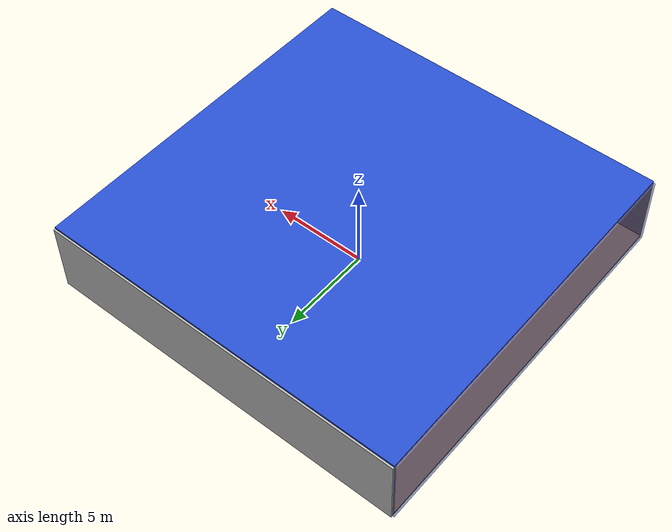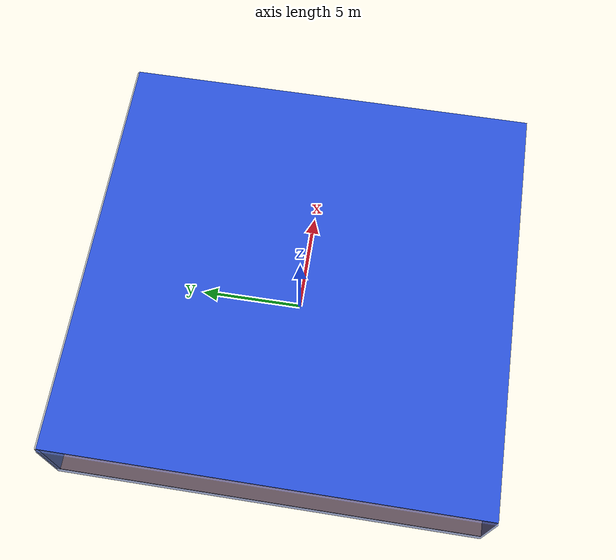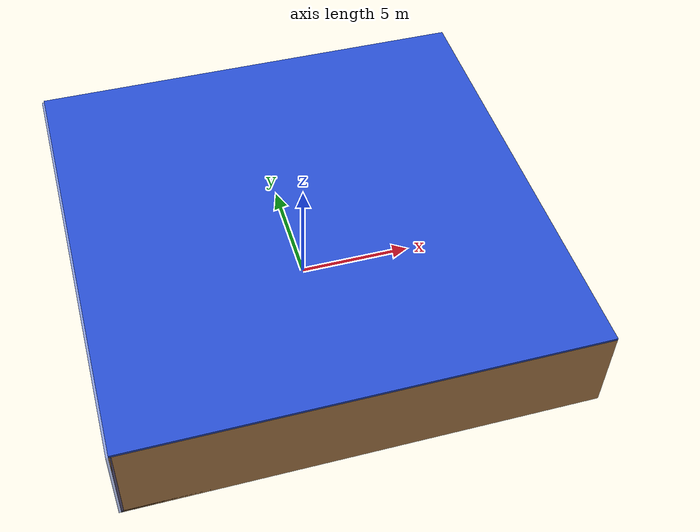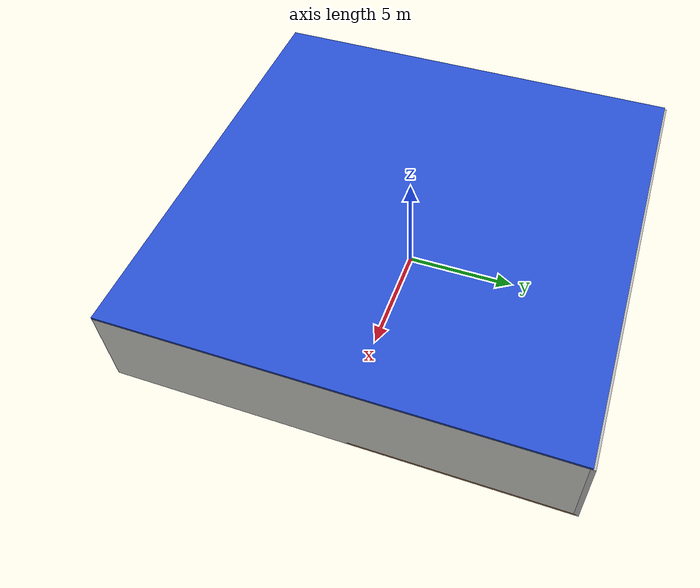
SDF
<sdf version="1.4">
 <world name="default">
  <physics type="ode">
   <max_step_size>0.001</max_step_size>
   <real_time_factor>1</real_time_factor>
   <real_time_update_rate>1000</real_time_update_rate>
   <gravity>0 0 -9.8</gravity>
  </physics>
  <scene><ambient>0.4 0.4 0.4 1</ambient><background>0.7 0.7 0.7 1</background><shadows>1</shadows></scene>
  <model name="Surrounding">
   <static>1</static>
   <link name="Ceiling">
    <collision name="Ceiling_Collision"><geometry><box><size>20 20 0.1</size></box></geometry></collision>
    <visual name="Ceiling_Visual">
     <geometry><box><size>20 20 0.1</size></box></geometry>
     <material>
      <script><uri>file://media/materials/scripts/gazebo.material</uri><name>Gazebo/BlueGlow</name></script>
     </material>
    </visual>
    <pose>0 0 4.05 0 0 0</pose>
   </link>
   <link name="Wall_South">
    <collision name="Wall_South_Collision">
     <geometry><box><size>20 0 4</size></box></geometry>
     <pose>0 0 2 0 -0 0</pose>
    </collision>
    <visual name="Wall_South_Visual">
     <pose>0 0 2 0 -0 0</pose>
     <geometry><box><size>20 0 4</size></box></geometry>
     <material>
      <script><uri>file://media/materials/scripts/gazebo.material</uri><name>Gazebo/WoodPallet</name></script>
     </material>
    </visual>
    <velocity_decay><linear>0</linear><angular>0</angular></velocity_decay>
    <pose>0 -10 0 0 -0 0</pose>
   </link>
   <link name="Wall_East">
    <collision name="Wall_21_Collision">
     <geometry><box><size>20 0 4</size></box></geometry>
     <pose>0 0 2 0 -0 0</pose>
    </collision>
    <visual name="Wall_21_Visual">
     <pose>0 0 2 0 -0 0</pose>
     <geometry><box><size>20 0 4</size></box></geometry>
     <material>
      <script><uri>file://media/materials/scripts/gazebo.material</uri><name>Gazebo/CeilingTiled</name></script>
     </material>
    </visual>
    <velocity_decay><linear>0</linear><angular>0</angular></velocity_decay>
    <pose>10 0 0 0 -0 1.5708</pose>
   </link>
   <link name="Wall_North">
    <collision name="Wall_22_Collision">
     <geometry><box><size>20 0.2 4</size></box></geometry>
     <pose>0 0 2 0 -0 0</pose>
    </collision>
    <visual name="Wall_22_Visual">
     <pose>0 0 2 0 -0 0</pose>
     <geometry><box><size>20 0.2 4</size></box></geometry>
     <material>
      <script><uri>file://media/materials/scripts/gazebo.material</uri><name>Gazebo/Pioneer2Body</name></script>
     </material>
    </visual>
    <velocity_decay><linear>0</linear><angular>0</angular></velocity_decay>
    <pose>0 10 0 0 -0 0</pose>
   </link>
   <link name="Wall_West">
    <collision name="Wall_23_Collision">
     <geometry><box><size>20 0.2 4</size></box></geometry>
     <pose>0 0 2 0 -0 0</pose>
    </collision>
    <visual name="Wall_23_Visual">
     <pose>0 0 2 0 -0 0</pose>
     <geometry><box><size>20 0.2 4</size></box></geometry>
     <material>
      <script><uri>file://media/materials/scripts/gazebo.material</uri><name>Gazebo/BlueTransparent</name></script>
     </material>
    </visual>
    <velocity_decay><linear>0</linear><angular>0</angular></velocity_decay>
    <pose>-10 0 0 0 0 -1.5708</pose>
   </link>
   <link name="Ground_link">
    <collision name="collision">
     <pose>0 0 .05 0 -0 0</pose>
     <geometry><box><size>20 20 0.1</size></box></geometry>
    </collision>
    <visual name="visual">
     <pose>0 0 .05 0 -0 0</pose>
     <geometry><box><size>20 20 0.1</size></box></geometry>
     <material>
      <script><uri>file://media/materials/scripts/gazebo.material</uri><name>Gazebo/Wood</name></script>
     </material>
    </visual>
   </link>
   <static>1</static>
  </model>
  <spherical_coordinates>
   <surface_model>EARTH_WGS84</surface_model>
   <latitude_deg>0</latitude_deg>
   <longitude_deg>0</longitude_deg>
   <elevation>0</elevation>
   <heading_deg>0</heading_deg>
  </spherical_coordinates>
  <light name="lightball_0" type="diffuse">
   <diffuse>0.8 0.8 0.8 1</diffuse>
   <specular>0.2 0.2 0.2 1</specular>
   <attenuation>
    <range>100</range>
    <constant>0.7</constant>
    <linear>0.01</linear>
    <quadratic>0.001</quadratic>
   </attenuation>
   <direction>-0.5 0.1 -0.9</direction>
   <pose>1.02545805414 9.31068824186 0.944837938011 0 0 0</pose>
  </light>
  <light name="lightball_1" type="diffuse">
   <diffuse>0.8 0.8 0.8 1</diffuse>
   <specular>0.2 0.2 0.2 1</specular>
   <attenuation>
    <range>100</range>
    <constant>0.7</constant>
    <linear>0.01</linear>
    <quadratic>0.001</quadratic>
   </attenuation>
   <direction>-0.5 0.1 -0.9</direction>
   <pose>-8.92053106584 -3.39159599624 3.48284910774 0 0 0</pose>
  </light>
  <light name="lightball_2" type="diffuse">
   <diffuse>0.8 0.8 0.8 1</diffuse>
   <specular>0.2 0.2 0.2 1</specular>
   <attenuation>
    <range>100</range>
    <constant>0.7</constant>
    <linear>0.01</linear>
    <quadratic>0.001</quadratic>
   </attenuation>
   <direction>-0.5 0.1 -0.9</direction>
   <pose>-8.82117177053 -2.84030920298 1.78098488051 0 0 0</pose>
  </light>
  <light name="lightball_3" type="diffuse">
   <diffuse>0.8 0.8 0.8 1</diffuse>
   <specular>0.2 0.2 0.2 1</specular>
   <attenuation>
    <range>100</range>
    <constant>0.7</constant>
    <linear>0.01</linear>
    <quadratic>0.001</quadratic>
   </attenuation>
   <direction>-0.5 0.1 -0.9</direction>
   <pose>-6.27739198261 5.73345018408 1.29045458466 0 0 0</pose>
  </light>
  <light name="lightball_4" type="diffuse">
   <diffuse>0.8 0.8 0.8 1</diffuse>
   <specular>0.2 0.2 0.2 1</specular>
   <attenuation>
    <range>100</range>
    <constant>0.7</constant>
    <linear>0.01</linear>
    <quadratic>0.001</quadratic>
   </attenuation>
   <direction>-0.5 0.1 -0.9</direction>
   <pose>8.05211000723 -4.61288281313 3.41287507909 0 0 0</pose>
  </light>
  <light name="lightball_5" type="diffuse">
   <diffuse>0.8 0.8 0.8 1</diffuse>
   <specular>0.2 0.2 0.2 1</specular>
   <attenuation>
    <range>100</range>
    <constant>0.7</constant>
    <linear>0.01</linear>
    <quadratic>0.001</quadratic>
   </attenuation>
   <direction>-0.5 0.1 -0.9</direction>
   <pose>-1.37149422897 6.28587017782 1.42550481609 0 0 0</pose>
  </light>
  <light name="lightball_6" type="diffuse">
   <diffuse>0.8 0.8 0.8 1</diffuse>
   <specular>0.2 0.2 0.2 1</specular>
   <attenuation>
    <range>100</range>
    <constant>0.7</constant>
    <linear>0.01</linear>
    <quadratic>0.001</quadratic>
   </attenuation>
   <direction>-0.5 0.1 -0.9</direction>
   <pose>-4.47523621802 -7.35929818711 2.77690621945 0 0 0</pose>
  </light>
  <light name="lightball_7" type="diffuse">
   <diffuse>0.8 0.8 0.8 1</diffuse>
   <specular>0.2 0.2 0.2 1</specular>
   <attenuation>
    <range>100</range>
    <constant>0.7</constant>
    <linear>0.01</linear>
    <quadratic>0.001</quadratic>
   </attenuation>
   <direction>-0.5 0.1 -0.9</direction>
   <pose>4.21721767715 -9.28210395867 1.05778675873 0 0 0</pose>
  </light>
  <light name="lightball_8" type="diffuse">
   <diffuse>0.8 0.8 0.8 1</diffuse>
   <specular>0.2 0.2 0.2 1</specular>
   <attenuation>
    <range>100</range>
    <constant>0.7</constant>
    <linear>0.01</linear>
    <quadratic>0.001</quadratic>
   </attenuation>
   <direction>-0.5 0.1 -0.9</direction>
   <pose>6.38700728745 8.64065533983 2.30460991525 0 0 0</pose>
  </light>
  <light name="lightball_9" type="diffuse">
   <diffuse>0.8 0.8 0.8 1</diffuse>
   <specular>0.2 0.2 0.2 1</specular>
   <attenuation>
    <range>100</range>
    <constant>0.7</constant>
    <linear>0.01</linear>
    <quadratic>0.001</quadratic>
   </attenuation>
   <direction>-0.5 0.1 -0.9</direction>
   <pose>-7.89052680247 1.2449845958 2.05354448538 0 0 0</pose>
  </light>
  <light name="lightball_10" type="diffuse">
   <diffuse>0.8 0.8 0.8 1</diffuse>
   <specular>0.2 0.2 0.2 1</specular>
   <attenuation>
    <range>100</range>
    <constant>0.7</constant>
    <linear>0.01</linear>
    <quadratic>0.001</quadratic>
   </attenuation>
   <direction>-0.5 0.1 -0.9</direction>
   <pose>6.80742927913 -5.96733585792 1.39765939518 0 0 0</pose>
  </light>
  <include><uri>model://table</uri><pose>-2.40027388239 -8.51535492106 0 0 0 2.16645225126</pose></include>
  <include>
   <uri>model://robocup_3Dsim_goal</uri>
   <pose>2.62907694967 -4.37926068747 0 0 0 1.28403019046</pose>
  </include>
  <include>
   <uri>model://construction_cone</uri>
   <pose>1.23476077647 -0.90919284446 0 0 0 2.96020513814</pose>
  </include>
  <include><uri>model://table</uri><pose>1.73921891889 8.38673242671 0 0 0 0.951601331719</pose></include>
  <include>
   <uri>model://construction_cone</uri>
   <pose>4.71841456304 -4.42123676047 0 0 0 0.894710646056</pose>
  </include>
  <include><uri>model://table</uri><pose>6.61609610528 0.752716740785 0 0 0 0.67291876858</pose></include>
 </world>
</sdf>

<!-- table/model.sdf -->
<sdf version="1.5">
  <model name="table">
    <static>true</static>
    <link name="link">
      <collision name="surface">
        <pose>0 0 1.0 0 0 0</pose>
        <geometry>
          <box>
            <size>1.5 0.8 0.03</size>
          </box>
        </geometry>
        <surface>
          <friction>
            <ode>
              <mu>0.6</mu>
              <mu2>0.6</mu2>
            </ode>
          </friction>
        </surface>
      </collision>
      <visual name="visual1">
        <pose>0 0 1.0 0 0 0</pose>
        <geometry>
          <box>
            <size>1.5 0.8 0.03</size>
          </box>
        </geometry>
        <material>
          <script>
            <uri>model://media/materials/scripts/gazebo.material</uri>
            <name>Gazebo/Wood</name>
          </script>
        </material>
      </visual>
      <collision name="front_left_leg">
        <pose>0.68 0.38 0.5 0 0 0</pose>
        <geometry>
          <cylinder>
            <radius>0.02</radius>
            <length>1.0</length>
          </cylinder>
        </geometry>
      </collision>
      <visual name="front_left_leg">
        <pose>0.68 0.38 0.5 0 0 0</pose>
        <geometry>
          <cylinder>
            <radius>0.02</radius>
            <length>1.0</length>
          </cylinder>
        </geometry>
        <material>
          <script>
            <uri>model://media/materials/scripts/gazebo.material</uri>
            <name>Gazebo/Grey</name>
          </script>
        </material>
      </visual>
      <collision name="front_right_leg">
        <pose>0.68 -0.38 0.5 0 0 0</pose>
        <geometry>
          <cylinder>
            <radius>0.02</radius>
            <length>1.0</length>
          </cylinder>
        </geometry>
      </collision>
      <visual name="front_right_leg">
        <pose>0.68 -0.38 0.5 0 0 0</pose>
        <geometry>
          <cylinder>
            <radius>0.02</radius>
            <length>1.0</length>
          </cylinder>
        </geometry>
        <material>
          <script>
            <uri>model://media/materials/scripts/gazebo.material</uri>
            <name>Gazebo/Grey</name>
          </script>
        </material>
      </visual>
      <collision name="back_right_leg">
        <pose>-0.68 -0.38 0.5 0 0 0</pose>
        <geometry>
          <cylinder>
            <radius>0.02</radius>
            <length>1.0</length>
          </cylinder>
        </geometry>
      </collision>
      <visual name="back_right_leg">
        <pose>-0.68 -0.38 0.5 0 0 0</pose>
        <geometry>
          <cylinder>
            <radius>0.02</radius>
            <length>1.0</length>
          </cylinder>
        </geometry>
        <material>
          <script>
            <uri>model://media/materials/scripts/gazebo.material</uri>
            <name>Gazebo/Grey</name>
          </script>
        </material>
      </visual>
      <collision name="back_left_leg">
        <pose>-0.68 0.38 0.5 0 0 0</pose>
        <geometry>
          <cylinder>
            <radius>0.02</radius>
            <length>1.0</length>
          </cylinder>
        </geometry>
      </collision>
      <visual name="back_left_leg">
        <pose>-0.68 0.38 0.5 0 0 0</pose>
        <geometry>
          <cylinder>
            <radius>0.02</radius>
            <length>1.0</length>
          </cylinder>
        </geometry>
        <material>
          <script>
            <uri>model://media/materials/scripts/gazebo.material</uri>
            <name>Gazebo/Grey</name>
          </script>
        </material>
      </visual>
    </link>
  </model>
</sdf>

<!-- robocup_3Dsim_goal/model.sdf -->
<sdf version="1.5">
  <model name="robocup_3d_goal">
    <static>true</static>
    <link name="left_post">
      <pose>0 1.05 0.45 0 0 0</pose>
      <collision name="collision">
        <geometry>
          <cylinder>
            <radius>0.05</radius>
            <length>0.9</length>
          </cylinder>
        </geometry>
      </collision>
      <visual name="visual">
        <geometry>
          <cylinder>
            <radius>0.05</radius>
            <length>0.9</length>
          </cylinder>
        </geometry>
        <material>
          <script>
            <uri>file://media/materials/scripts/gazebo.material</uri>
            <name>Gazebo/ZincYellow</name>
          </script>
        </material>
      </visual>
    </link>
    <link name="left_support_horiz_lower">
      <pose>0.30 1.05 0.01 0 0 0</pose>
      <collision name="collision">
        <geometry>
          <box>
            <size>0.50 0.02 0.02</size>
          </box>
        </geometry>
      </collision>
      <visual name="visual">
        <geometry>
          <box>
            <size>0.50 0.02 0.02</size>
          </box>
        </geometry>
        <material>
          <script>
            <uri>file://media/materials/scripts/gazebo.material</uri>
            <name>Gazebo/White</name>
          </script>
        </material>
      </visual>
    </link>
    <link name="left_support_horiz_upper">
      <pose>0.30 1.05 0.79 0 0 0</pose>
      <collision name="collision">
        <geometry>
          <box>
            <size>0.50 0.02 0.02</size>
          </box>
        </geometry>
      </collision>
      <visual name="visual">
        <geometry>
          <box>
            <size>0.50 0.02 0.02</size>
          </box>
        </geometry>
        <material>
          <script>
            <uri>file://media/materials/scripts/gazebo.material</uri>
            <name>Gazebo/White</name>
          </script>
        </material>
      </visual>
    </link>
    <link name="left_support_vertical">
      <pose>0.56 1.05 0.4 0 1.5708 0</pose>
      <collision name="collision">
        <geometry>
          <box>
            <size>0.80 0.02 0.02</size>
          </box>
        </geometry>
      </collision>
      <visual name="visual">
        <geometry>
          <box>
            <size>0.80 0.02 0.02</size>
          </box>
        </geometry>
        <material>
          <script>
            <uri>file://media/materials/scripts/gazebo.material</uri>
            <name>Gazebo/White</name>
          </script>
        </material>
      </visual>
    </link>
    <link name="right_support_horiz_lower">
      <pose>0.30 -1.05 0.01 0 0 0</pose>
      <collision name="collision">
        <geometry>
          <box>
            <size>0.50 0.02 0.02</size>
          </box>
        </geometry>
      </collision>
      <visual name="visual">
        <geometry>
          <box>
            <size>0.50 0.02 0.02</size>
          </box>
        </geometry>
        <material>
          <script>
            <uri>file://media/materials/scripts/gazebo.material</uri>
            <name>Gazebo/White</name>
          </script>
        </material>
      </visual>
    </link>
    <link name="right_support_horiz_upper">
      <pose>0.30 -1.05 0.79 0 0 0</pose>
      <collision name="collision">
        <geometry>
          <box>
            <size>0.50 0.02 0.02</size>
          </box>
        </geometry>
      </collision>
      <visual name="visual">
        <geometry>
          <box>
            <size>0.50 0.02 0.02</size>
          </box>
        </geometry>
        <material>
          <script>
            <uri>file://media/materials/scripts/gazebo.material</uri>
            <name>Gazebo/White</name>
          </script>
        </material>
      </visual>
    </link>
    <link name="right_support_vertical">
      <pose>0.56 -1.05 0.4 0 1.5708 0</pose>
      <collision name="collision">
        <geometry>
          <box>
            <size>0.80 0.02 0.02</size>
          </box>
        </geometry>
      </collision>
      <visual name="visual">
        <geometry>
          <box>
            <size>0.80 0.02 0.02</size>
          </box>
        </geometry>
        <material>
          <script>
            <uri>file://media/materials/scripts/gazebo.material</uri>
            <name>Gazebo/White</name>
          </script>
        </material>
      </visual>
    </link>
    <link name="center_support_horiz_lower">
      <pose>0.56 0 0.01 0 1.5708 0</pose>
      <collision name="collision">
        <geometry>
          <box>
            <size>0.02 2.08 0.02</size>
          </box>
        </geometry>
      </collision>
      <visual name="visual">
        <geometry>
          <box>
            <size>0.02 2.08 0.02</size>
          </box>
        </geometry>
        <material>
          <script>
            <uri>file://media/materials/scripts/gazebo.material</uri>
            <name>Gazebo/White</name>
          </script>
        </material>
      </visual>
    </link>
    <link name="center_support_horiz_upper">
      <pose>0.56 0 0.79 0 1.5708 0</pose>
      <collision name="collision">
        <geometry>
          <box>
            <size>0.02 2.08 0.02</size>
          </box>
        </geometry>
      </collision>
      <visual name="visual">
        <geometry>
          <box>
            <size>0.02 2.08 0.02</size>
          </box>
        </geometry>
        <material>
          <script>
            <uri>file://media/materials/scripts/gazebo.material</uri>
            <name>Gazebo/White</name>
          </script>
        </material>
      </visual>
    </link>
    <link name="right_post">
      <pose>0 -1.05 0.45 0 0 0</pose>
      <collision name="collision">
        <geometry>
          <cylinder>
            <radius>0.05</radius>
            <length>0.9</length>
          </cylinder>
        </geometry>
      </collision>
      <visual name="visual">
        <geometry>
          <cylinder>
            <radius>0.05</radius>
            <length>0.9</length>
          </cylinder>
        </geometry>
        <material>
          <script>
            <uri>file://media/materials/scripts/gazebo.material</uri>
            <name>Gazebo/ZincYellow</name>
          </script>
        </material>
      </visual>
    </link>
    <link name="crossbar">
      <pose>0 0 0.85 1.57 1.57 0</pose>
      <collision name="collision">
        <geometry>
          <cylinder>
            <radius>0.05</radius>
            <length>2.0</length>
          </cylinder>
        </geometry>
      </collision>
      <visual name="visual">
        <geometry>
          <cylinder>
            <radius>0.05</radius>
            <length>2.0</length>
          </cylinder>
        </geometry>
        <material>
          <script>
            <uri>file://media/materials/scripts/gazebo.material</uri>
            <name>Gazebo/ZincYellow</name>
          </script>
        </material>
      </visual>
    </link>
    <link name="center_net">
      <pose>0.56 0 0.40 0 0 0</pose>
      <collision name="collision">
        <geometry>
          <box>
            <size>0.01 2.1 0.80</size>
          </box>
        </geometry>
      </collision>
      <visual name="visual">
        <geometry>
          <box>
            <size>0.01 2.1 0.80</size>
          </box>
        </geometry>
        <material>
          <script>
            <uri>model://../model_source/models/robocup09_spl_field/materials/scripts/</uri>
            <uri>model://../model_source/models/robocup09_spl_field/materials/textures/</uri>
            <name>RoboCup/Net</name>
          </script>
        </material>
      </visual>
    </link>
    <link name="left_net">
      <pose>0.30 1.05 0.40 0 0 0</pose>
      <collision name="collision">
        <geometry>
          <box>
            <size>0.50 0.01 0.76</size>
          </box>
        </geometry>
      </collision>
      <visual name="visual">
        <geometry>
          <box>
            <size>0.50 0.01 0.76</size>
          </box>
        </geometry>
        <material>
          <script>
            <uri>model://../model_source/models/robocup09_spl_field/materials/scripts/</uri>
            <uri>model://../model_source/models/robocup09_spl_field/materials/textures/</uri>
            <name>RoboCup/Net</name>
          </script>
        </material>
      </visual>
    </link>
    <link name="right_net">
      <pose>0.30 -1.05 0.40 0 0 0</pose>
      <collision name="collision">
        <geometry>
          <box>
            <size>0.50 0.01 0.76</size>
          </box>
        </geometry>
      </collision>
      <visual name="visual">
        <geometry>
          <box>
            <size>0.50 0.01 0.76</size>
          </box>
        </geometry>
        <material>
          <script>
            <uri>model://../model_source/models/robocup09_spl_field/materials/scripts/</uri>
            <uri>model://../model_source/models/robocup09_spl_field/materials/textures/</uri>
            <name>RoboCup/Net</name>
          </script>
        </material>
      </visual>
    </link>
  </model>
</sdf>

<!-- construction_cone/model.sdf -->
<sdf version="1.5">
  <model name="Construction Cone">
    <link name="link">
      <collision name="collision">
        <geometry>
          <mesh>
            <scale>10 10 10</scale>
            <uri>file://isr-testbed/construction_cone/meshes/construction_cone.dae</uri>
          </mesh>
        </geometry>
      </collision>
      <visual name="visual">
        <geometry>
          <mesh>
            <scale>10 10 10</scale>
            <uri>file://isr-testbed/construction_cone/meshes/construction_cone.dae</uri>
          </mesh>
        </geometry>
      </visual>
    </link>
  </model>
</sdf>
